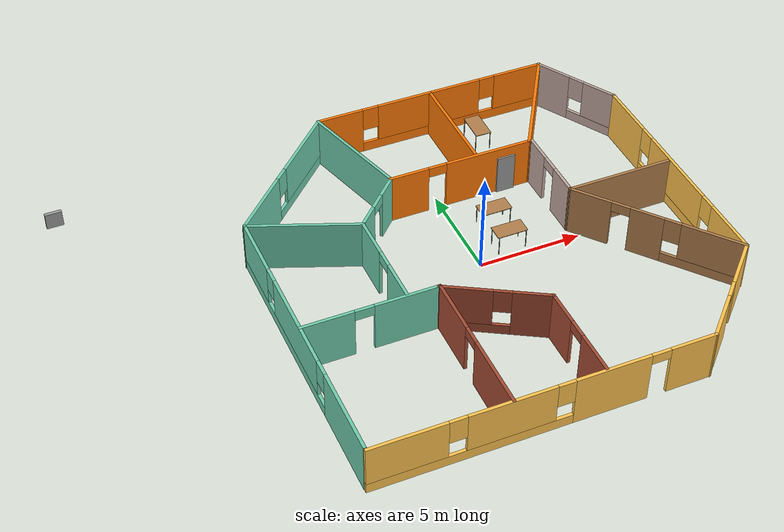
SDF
<sdf version="1.6">
 <world name="__default__">
  <model name="building">
   <pose>0.12432 -0.07335 0 0 -0 0</pose>
   <link name="Door_6">
    <collision name="Door_6_Collision">
     <geometry><box><size>0.9 0.17 2</size></box></geometry>
     <pose>0 0 1 0 -0 0</pose>
    </collision>
    <visual name="Door_6_Visual">
     <pose>0 0 1 0 -0 0</pose>
     <geometry><box><size>0.9 0.17 2</size></box></geometry>
     <material>
      <script><uri>file://media/materials/scripts/gazebo.material</uri><name>Gazebo/Grey</name></script>
     </material>
    </visual>
    <pose>3.22476 4.4878 0 0 -0 0</pose>
   </link>
   <link name="Wall_0">
    <pose>-9.87628 -2.77567 0 0 -0 1.5708</pose>
    <visual name="Wall_0_Visual_0">
     <pose>-4.91178 0 1.25 0 -0 0</pose>
     <geometry><box><size>4.17643 0.15 2.5</size></box></geometry>
     <material>
      <script><uri>file://media/materials/scripts/gazebo.material</uri><name>Gazebo/Grey</name></script>
      <ambient>0.435294 0.796078 0.67451 1</ambient>
     </material>
     <meta><layer>0</layer></meta>
    </visual>
    <collision name="Wall_0_Collision_0">
     <geometry><box><size>4.17643 0.15 2.5</size></box></geometry>
     <pose>-4.91178 0 1.25 0 -0 0</pose>
    </collision>
    <visual name="Wall_0_Visual_1">
     <pose>2.08822 0 0.25 0 -0 0</pose>
     <geometry><box><size>9.82357 0.15 0.5</size></box></geometry>
     <material>
      <script><uri>file://media/materials/scripts/gazebo.material</uri><name>Gazebo/Grey</name></script>
      <ambient>0.435294 0.796078 0.67451 1</ambient>
     </material>
     <meta><layer>0</layer></meta>
    </visual>
    <collision name="Wall_0_Collision_1">
     <geometry><box><size>9.82357 0.15 0.5</size></box></geometry>
     <pose>2.08822 0 0.25 0 -0 0</pose>
    </collision>
    <visual name="Wall_0_Visual_2">
     <pose>0.530704 0 1.5 0 -0 0</pose>
     <geometry><box><size>5.10854 0.15 2</size></box></geometry>
     <material>
      <script><uri>file://media/materials/scripts/gazebo.material</uri><name>Gazebo/Grey</name></script>
      <ambient>0.435294 0.796078 0.67451 1</ambient>
     </material>
     <meta><layer>0</layer></meta>
    </visual>
    <collision name="Wall_0_Collision_2">
     <geometry><box><size>5.10854 0.15 2</size></box></geometry>
     <pose>0.530704 0 1.5 0 -0 0</pose>
    </collision>
    <visual name="Wall_0_Visual_3">
     <pose>5.44249 0 1.5 0 -0 0</pose>
     <geometry><box><size>3.11503 0.15 2</size></box></geometry>
     <material>
      <script><uri>file://media/materials/scripts/gazebo.material</uri><name>Gazebo/Grey</name></script>
      <ambient>0.435294 0.796078 0.67451 1</ambient>
     </material>
     <meta><layer>0</layer></meta>
    </visual>
    <collision name="Wall_0_Collision_3">
     <geometry><box><size>3.11503 0.15 2</size></box></geometry>
     <pose>5.44249 0 1.5 0 -0 0</pose>
    </collision>
    <visual name="Wall_0_Visual_4">
     <pose>-2.42356 0 1.9 0 -0 0</pose>
     <geometry><box><size>0.8 0.15 1.2</size></box></geometry>
     <material>
      <script><uri>file://media/materials/scripts/gazebo.material</uri><name>Gazebo/Grey</name></script>
      <ambient>0.435294 0.796078 0.67451 1</ambient>
     </material>
     <meta><layer>0</layer></meta>
    </visual>
    <collision name="Wall_0_Collision_4">
     <geometry><box><size>0.8 0.15 1.2</size></box></geometry>
     <pose>-2.42356 0 1.9 0 -0 0</pose>
    </collision>
    <visual name="Wall_0_Visual_5">
     <pose>3.48497 0 1.9 0 -0 0</pose>
     <geometry><box><size>0.8 0.15 1.2</size></box></geometry>
     <material>
      <script><uri>file://media/materials/scripts/gazebo.material</uri><name>Gazebo/Grey</name></script>
      <ambient>0.435294 0.796078 0.67451 1</ambient>
     </material>
     <meta><layer>0</layer></meta>
    </visual>
    <collision name="Wall_0_Collision_5">
     <geometry><box><size>0.8 0.15 1.2</size></box></geometry>
     <pose>3.48497 0 1.9 0 -0 0</pose>
    </collision>
   </link>
   <link name="Wall_10">
    <pose>-6.6982 -2.75163 0 0 -0 3.14159</pose>
    <visual name="Wall_10_Visual_0">
     <pose>-1.70542 0 1.25 0 -0 0</pose>
     <geometry><box><size>3.08916 0.15 2.5</size></box></geometry>
     <material>
      <script><uri>file://media/materials/scripts/gazebo.material</uri><name>Gazebo/Grey</name></script>
      <ambient>0.435294 0.796078 0.67451 1</ambient>
     </material>
     <meta><layer>0</layer></meta>
    </visual>
    <collision name="Wall_10_Collision_0">
     <geometry><box><size>3.08916 0.15 2.5</size></box></geometry>
     <pose>-1.70542 0 1.25 0 -0 0</pose>
    </collision>
    <visual name="Wall_10_Visual_1">
     <pose>1.99458 0 1.25 0 -0 0</pose>
     <geometry><box><size>2.51084 0.15 2.5</size></box></geometry>
     <material>
      <script><uri>file://media/materials/scripts/gazebo.material</uri><name>Gazebo/Grey</name></script>
      <ambient>0.435294 0.796078 0.67451 1</ambient>
     </material>
     <meta><layer>0</layer></meta>
    </visual>
    <collision name="Wall_10_Collision_1">
     <geometry><box><size>2.51084 0.15 2.5</size></box></geometry>
     <pose>1.99458 0 1.25 0 -0 0</pose>
    </collision>
    <visual name="Wall_10_Visual_2">
     <pose>0.289158 0 2.25 0 -0 0</pose>
     <geometry><box><size>0.9 0.15 0.5</size></box></geometry>
     <material>
      <script><uri>file://media/materials/scripts/gazebo.material</uri><name>Gazebo/Grey</name></script>
      <ambient>0.435294 0.796078 0.67451 1</ambient>
     </material>
     <meta><layer>0</layer></meta>
    </visual>
    <collision name="Wall_10_Collision_2">
     <geometry><box><size>0.9 0.15 0.5</size></box></geometry>
     <pose>0.289158 0 2.25 0 -0 0</pose>
    </collision>
   </link>
   <link name="Wall_12">
    <pose>-5.00707 -0.228489 0 0 -0 1.5708</pose>
    <visual name="Wall_12_Visual_0">
     <pose>-1.49142 0 1.25 0 -0 0</pose>
     <geometry><box><size>2.01716 0.15 2.5</size></box></geometry>
     <material>
      <script><uri>file://media/materials/scripts/gazebo.material</uri><name>Gazebo/Grey</name></script>
      <ambient>0.435294 0.796078 0.67451 1</ambient>
     </material>
     <meta><layer>0</layer></meta>
    </visual>
    <collision name="Wall_12_Collision_0">
     <geometry><box><size>2.01716 0.15 2.5</size></box></geometry>
     <pose>-1.49142 0 1.25 0 -0 0</pose>
    </collision>
    <visual name="Wall_12_Visual_1">
     <pose>1.45858 0 1.25 0 -0 0</pose>
     <geometry><box><size>2.08284 0.15 2.5</size></box></geometry>
     <material>
      <script><uri>file://media/materials/scripts/gazebo.material</uri><name>Gazebo/Grey</name></script>
      <ambient>0.435294 0.796078 0.67451 1</ambient>
     </material>
     <meta><layer>0</layer></meta>
    </visual>
    <collision name="Wall_12_Collision_1">
     <geometry><box><size>2.08284 0.15 2.5</size></box></geometry>
     <pose>1.45858 0 1.25 0 -0 0</pose>
    </collision>
    <visual name="Wall_12_Visual_2">
     <pose>-0.032844 0 2.25 0 -0 0</pose>
     <geometry><box><size>0.9 0.15 0.5</size></box></geometry>
     <material>
      <script><uri>file://media/materials/scripts/gazebo.material</uri><name>Gazebo/Grey</name></script>
      <ambient>0.435294 0.796078 0.67451 1</ambient>
     </material>
     <meta><layer>0</layer></meta>
    </visual>
    <collision name="Wall_12_Collision_2">
     <geometry><box><size>0.9 0.15 0.5</size></box></geometry>
     <pose>-0.032844 0 2.25 0 -0 0</pose>
    </collision>
   </link>
   <link name="Wall_13">
    <collision name="Wall_13_Collision">
     <geometry><box><size>5.39621 0.15 2.5</size></box></geometry>
     <pose>0 0 1.25 0 -0 0</pose>
    </collision>
    <visual name="Wall_13_Visual">
     <pose>0 0 1.25 0 -0 0</pose>
     <geometry><box><size>5.39621 0.15 2.5</size></box></geometry>
     <material>
      <script><uri>file://media/materials/scripts/gazebo.material</uri><name>Gazebo/Grey</name></script>
      <ambient>0.435294 0.796078 0.67451 1</ambient>
     </material>
     <meta><layer>0</layer></meta>
    </visual>
    <pose>-7.44168 3.17292 0 0 -0 2.76018</pose>
   </link>
   <link name="Wall_15">
    <pose>-3.82267 3.38091 0 0 -0 0.785398</pose>
    <visual name="Wall_15_Visual_0">
     <pose>-1.10253 0 1.25 0 -0 0</pose>
     <geometry><box><size>1.29494 0.15 2.5</size></box></geometry>
     <material>
      <script><uri>file://media/materials/scripts/gazebo.material</uri><name>Gazebo/Grey</name></script>
      <ambient>0.435294 0.796078 0.67451 1</ambient>
     </material>
     <meta><layer>0</layer></meta>
    </visual>
    <collision name="Wall_15_Collision_0">
     <geometry><box><size>1.29494 0.15 2.5</size></box></geometry>
     <pose>-1.10253 0 1.25 0 -0 0</pose>
    </collision>
    <visual name="Wall_15_Visual_1">
     <pose>1.09747 0 1.25 0 -0 0</pose>
     <geometry><box><size>1.30506 0.15 2.5</size></box></geometry>
     <material>
      <script><uri>file://media/materials/scripts/gazebo.material</uri><name>Gazebo/Grey</name></script>
      <ambient>0.435294 0.796078 0.67451 1</ambient>
     </material>
     <meta><layer>0</layer></meta>
    </visual>
    <collision name="Wall_15_Collision_1">
     <geometry><box><size>1.30506 0.15 2.5</size></box></geometry>
     <pose>1.09747 0 1.25 0 -0 0</pose>
    </collision>
    <visual name="Wall_15_Visual_2">
     <pose>-0.005064 0 2.25 0 -0 0</pose>
     <geometry><box><size>0.9 0.15 0.5</size></box></geometry>
     <material>
      <script><uri>file://media/materials/scripts/gazebo.material</uri><name>Gazebo/Grey</name></script>
      <ambient>0.435294 0.796078 0.67451 1</ambient>
     </material>
     <meta><layer>0</layer></meta>
    </visual>
    <collision name="Wall_15_Collision_2">
     <geometry><box><size>0.9 0.15 0.5</size></box></geometry>
     <pose>-0.005064 0 2.25 0 -0 0</pose>
    </collision>
   </link>
   <link name="Wall_16">
    <pose>0.911739 4.56532 0 0 -0 0</pose>
    <visual name="Wall_16_Visual_0">
     <pose>-2.63993 0 1.25 0 -0 0</pose>
     <geometry><box><size>1.97015 0.15 2.5</size></box></geometry>
     <material>
      <script><uri>file://media/materials/scripts/gazebo.material</uri><name>Gazebo/Grey</name></script>
      <ambient>0.996078 0.47451 0.0196078 1</ambient>
     </material>
     <meta><layer>0</layer></meta>
    </visual>
    <collision name="Wall_16_Collision_0">
     <geometry><box><size>1.97015 0.15 2.5</size></box></geometry>
     <pose>-2.63993 0 1.25 0 -0 0</pose>
    </collision>
    <visual name="Wall_16_Visual_1">
     <pose>1.43507 0 1.25 0 -0 0</pose>
     <geometry><box><size>4.37985 0.15 2.5</size></box></geometry>
     <material>
      <script><uri>file://media/materials/scripts/gazebo.material</uri><name>Gazebo/Grey</name></script>
      <ambient>0.996078 0.47451 0.0196078 1</ambient>
     </material>
     <meta><layer>0</layer></meta>
    </visual>
    <collision name="Wall_16_Collision_1">
     <geometry><box><size>4.37985 0.15 2.5</size></box></geometry>
     <pose>1.43507 0 1.25 0 -0 0</pose>
    </collision>
    <visual name="Wall_16_Visual_2">
     <pose>-1.20485 0 2.25 0 -0 0</pose>
     <geometry><box><size>0.9 0.15 0.5</size></box></geometry>
     <material>
      <script><uri>file://media/materials/scripts/gazebo.material</uri><name>Gazebo/Grey</name></script>
      <ambient>0.996078 0.47451 0.0196078 1</ambient>
     </material>
     <meta><layer>0</layer></meta>
    </visual>
    <collision name="Wall_16_Collision_2">
     <geometry><box><size>0.9 0.15 0.5</size></box></geometry>
     <pose>-1.20485 0 2.25 0 -0 0</pose>
    </collision>
   </link>
   <link name="Wall_17">
    <collision name="Wall_17_Collision">
     <geometry><box><size>6.37153 0.15 2.5</size></box></geometry>
     <pose>0 0 1.25 0 -0 0</pose>
    </collision>
    <visual name="Wall_17_Visual">
     <pose>0 0 1.25 0 -0 0</pose>
     <geometry><box><size>6.37153 0.15 2.5</size></box></geometry>
     <material>
      <script><uri>file://media/materials/scripts/gazebo.material</uri><name>Gazebo/Grey</name></script>
      <ambient>0.996078 0.47451 0.0196078 1</ambient>
     </material>
     <meta><layer>0</layer></meta>
    </visual>
    <pose>6.08151 7.22111 0 0 -0 1.02313</pose>
   </link>
   <link name="Wall_19">
    <collision name="Wall_19_Collision">
     <geometry><box><size>5.67216 0.15 2.5</size></box></geometry>
     <pose>0 0 1.25 0 -0 0</pose>
    </collision>
    <visual name="Wall_19_Visual">
     <pose>0 0 1.25 0 -0 0</pose>
     <geometry><box><size>5.67216 0.15 2.5</size></box></geometry>
     <material>
      <script><uri>file://media/materials/scripts/gazebo.material</uri><name>Gazebo/Grey</name></script>
      <ambient>0.435294 0.796078 0.67451 1</ambient>
     </material>
     <meta><layer>0</layer></meta>
    </visual>
    <pose>-3.39349 7.22111 0 0 -0 1.84785</pose>
   </link>
   <link name="Wall_2">
    <pose>-7.0125 7.01311 0 0 -0 0.785398</pose>
    <visual name="Wall_2_Visual_0">
     <pose>-2.34585 0 1.25 0 -0 0</pose>
     <geometry><box><size>3.55829 0.15 2.5</size></box></geometry>
     <material>
      <script><uri>file://media/materials/scripts/gazebo.material</uri><name>Gazebo/Grey</name></script>
      <ambient>0.435294 0.796078 0.67451 1</ambient>
     </material>
     <meta><layer>0</layer></meta>
    </visual>
    <collision name="Wall_2_Collision_0">
     <geometry><box><size>3.55829 0.15 2.5</size></box></geometry>
     <pose>-2.34585 0 1.25 0 -0 0</pose>
    </collision>
    <visual name="Wall_2_Visual_1">
     <pose>1.77914 0 0.25 0 -0 0</pose>
     <geometry><box><size>4.69171 0.15 0.5</size></box></geometry>
     <material>
      <script><uri>file://media/materials/scripts/gazebo.material</uri><name>Gazebo/Grey</name></script>
      <ambient>0.435294 0.796078 0.67451 1</ambient>
     </material>
     <meta><layer>0</layer></meta>
    </visual>
    <collision name="Wall_2_Collision_1">
     <geometry><box><size>4.69171 0.15 0.5</size></box></geometry>
     <pose>1.77914 0 0.25 0 -0 0</pose>
    </collision>
    <visual name="Wall_2_Visual_2">
     <pose>2.1627 0 1.5 0 -0 0</pose>
     <geometry><box><size>3.92461 0.15 2</size></box></geometry>
     <material>
      <script><uri>file://media/materials/scripts/gazebo.material</uri><name>Gazebo/Grey</name></script>
      <ambient>0.435294 0.796078 0.67451 1</ambient>
     </material>
     <meta><layer>0</layer></meta>
    </visual>
    <collision name="Wall_2_Collision_2">
     <geometry><box><size>3.92461 0.15 2</size></box></geometry>
     <pose>2.1627 0 1.5 0 -0 0</pose>
    </collision>
    <visual name="Wall_2_Visual_3">
     <pose>-0.183159 0 1.9 0 -0 0</pose>
     <geometry><box><size>0.767103 0.15 1.2</size></box></geometry>
     <material>
      <script><uri>file://media/materials/scripts/gazebo.material</uri><name>Gazebo/Grey</name></script>
      <ambient>0.435294 0.796078 0.67451 1</ambient>
     </material>
     <meta><layer>0</layer></meta>
    </visual>
    <collision name="Wall_2_Collision_3">
     <geometry><box><size>0.767103 0.15 1.2</size></box></geometry>
     <pose>-0.183159 0 1.9 0 -0 0</pose>
    </collision>
   </link>
   <link name="Wall_21">
    <collision name="Wall_21_Collision">
     <geometry><box><size>5.25 0.15 2.5</size></box></geometry>
     <pose>0 0 1.25 0 -0 0</pose>
    </collision>
    <visual name="Wall_21_Visual">
     <pose>0 0 1.25 0 -0 0</pose>
     <geometry><box><size>5.25 0.15 2.5</size></box></geometry>
     <material>
      <script><uri>file://media/materials/scripts/gazebo.material</uri><name>Gazebo/Grey</name></script>
      <ambient>0.996078 0.47451 0.0196078 1</ambient>
     </material>
     <meta><layer>0</layer></meta>
    </visual>
    <pose>1.71208 7.28497 0 0 0 -1.5708</pose>
   </link>
   <link name="Wall_23">
    <pose>0.656712 -7.49478 0 0 -0 1.5708</pose>
    <visual name="Wall_23_Visual_0">
     <pose>-1.33124 0 1.25 0 -0 0</pose>
     <geometry><box><size>2.08751 0.15 2.5</size></box></geometry>
     <material>
      <script><uri>file://media/materials/scripts/gazebo.material</uri><name>Gazebo/Bricks</name></script>
      <ambient>1 1 1 1</ambient>
     </material>
     <meta><layer>0</layer></meta>
    </visual>
    <collision name="Wall_23_Collision_0">
     <geometry><box><size>2.08751 0.15 2.5</size></box></geometry>
     <pose>-1.33124 0 1.25 0 -0 0</pose>
    </collision>
    <visual name="Wall_23_Visual_1">
     <pose>1.49376 0 1.25 0 -0 0</pose>
     <geometry><box><size>1.76249 0.15 2.5</size></box></geometry>
     <material>
      <script><uri>file://media/materials/scripts/gazebo.material</uri><name>Gazebo/Bricks</name></script>
      <ambient>1 1 1 1</ambient>
     </material>
     <meta><layer>0</layer></meta>
    </visual>
    <collision name="Wall_23_Collision_1">
     <geometry><box><size>1.76249 0.15 2.5</size></box></geometry>
     <pose>1.49376 0 1.25 0 -0 0</pose>
    </collision>
    <visual name="Wall_23_Visual_2">
     <pose>0.162514 0 2.25 0 -0 0</pose>
     <geometry><box><size>0.9 0.15 0.5</size></box></geometry>
     <material>
      <script><uri>file://media/materials/scripts/gazebo.material</uri><name>Gazebo/Bricks</name></script>
      <ambient>1 1 1 1</ambient>
     </material>
     <meta><layer>0</layer></meta>
    </visual>
    <collision name="Wall_23_Collision_2">
     <geometry><box><size>0.9 0.15 0.5</size></box></geometry>
     <pose>0.162514 0 2.25 0 -0 0</pose>
    </collision>
   </link>
   <link name="Wall_24">
    <pose>-1.4434 -3.98228 0 0 -0 2.61799</pose>
    <visual name="Wall_24_Visual_0">
     <pose>-1.59157 0 1.25 0 -0 0</pose>
     <geometry><box><size>1.81686 0.15 2.5</size></box></geometry>
     <material>
      <script><uri>file://media/materials/scripts/gazebo.material</uri><name>Gazebo/Bricks</name></script>
      <ambient>1 1 1 1</ambient>
     </material>
     <meta><layer>0</layer></meta>
    </visual>
    <collision name="Wall_24_Collision_0">
     <geometry><box><size>1.81686 0.15 2.5</size></box></geometry>
     <pose>-1.59157 0 1.25 0 -0 0</pose>
    </collision>
    <visual name="Wall_24_Visual_1">
     <pose>0.90843 0 0.25 0 -0 0</pose>
     <geometry><box><size>3.18314 0.15 0.5</size></box></geometry>
     <material>
      <script><uri>file://media/materials/scripts/gazebo.material</uri><name>Gazebo/Bricks</name></script>
      <ambient>1 1 1 1</ambient>
     </material>
     <meta><layer>0</layer></meta>
    </visual>
    <collision name="Wall_24_Collision_1">
     <geometry><box><size>3.18314 0.15 0.5</size></box></geometry>
     <pose>0.90843 0 0.25 0 -0 0</pose>
    </collision>
    <visual name="Wall_24_Visual_2">
     <pose>1.30843 0 1.5 0 -0 0</pose>
     <geometry><box><size>2.38314 0.15 2</size></box></geometry>
     <material>
      <script><uri>file://media/materials/scripts/gazebo.material</uri><name>Gazebo/Bricks</name></script>
      <ambient>1 1 1 1</ambient>
     </material>
     <meta><layer>0</layer></meta>
    </visual>
    <collision name="Wall_24_Collision_2">
     <geometry><box><size>2.38314 0.15 2</size></box></geometry>
     <pose>1.30843 0 1.5 0 -0 0</pose>
    </collision>
    <visual name="Wall_24_Visual_3">
     <pose>-0.283141 0 1.9 0 -0 0</pose>
     <geometry><box><size>0.8 0.15 1.2</size></box></geometry>
     <material>
      <script><uri>file://media/materials/scripts/gazebo.material</uri><name>Gazebo/Bricks</name></script>
      <ambient>1 1 1 1</ambient>
     </material>
     <meta><layer>0</layer></meta>
    </visual>
    <collision name="Wall_24_Collision_3">
     <geometry><box><size>0.8 0.15 1.2</size></box></geometry>
     <pose>-0.283141 0 1.9 0 -0 0</pose>
    </collision>
   </link>
   <link name="Wall_26">
    <collision name="Wall_26_Collision">
     <geometry><box><size>5.25 0.15 2.5</size></box></geometry>
     <pose>0 0 1.25 0 -0 0</pose>
    </collision>
    <visual name="Wall_26_Visual">
     <pose>0 0 1.25 0 -0 0</pose>
     <geometry><box><size>5.25 0.15 2.5</size></box></geometry>
     <material>
      <script><uri>file://media/materials/scripts/gazebo.material</uri><name>Gazebo/Wood</name></script>
      <ambient>0.760784 0.662745 0.627451 1</ambient>
     </material>
     <meta><layer>0</layer></meta>
    </visual>
    <pose>7.14765 0.688493 0 0 -0 3.14159</pose>
   </link>
   <link name="Wall_27">
    <pose>4.59765 2.61349 0 0 -0 1.5708</pose>
    <visual name="Wall_27_Visual_0">
     <pose>-1.18491 0 1.25 0 -0 0</pose>
     <geometry><box><size>1.63019 0.15 2.5</size></box></geometry>
     <material>
      <script><uri>file://media/materials/scripts/gazebo.material</uri><name>Gazebo/Grey</name></script>
      <ambient>0.760784 0.662745 0.627451 1</ambient>
     </material>
     <meta><layer>0</layer></meta>
    </visual>
    <collision name="Wall_27_Collision_0">
     <geometry><box><size>1.63019 0.15 2.5</size></box></geometry>
     <pose>-1.18491 0 1.25 0 -0 0</pose>
    </collision>
    <visual name="Wall_27_Visual_1">
     <pose>1.2651 0 1.25 0 -0 0</pose>
     <geometry><box><size>1.46981 0.15 2.5</size></box></geometry>
     <material>
      <script><uri>file://media/materials/scripts/gazebo.material</uri><name>Gazebo/Grey</name></script>
      <ambient>0.760784 0.662745 0.627451 1</ambient>
     </material>
     <meta><layer>0</layer></meta>
    </visual>
    <collision name="Wall_27_Collision_1">
     <geometry><box><size>1.46981 0.15 2.5</size></box></geometry>
     <pose>1.2651 0 1.25 0 -0 0</pose>
    </collision>
    <visual name="Wall_27_Visual_2">
     <pose>0.080189 0 2.25 0 -0 0</pose>
     <geometry><box><size>0.9 0.15 0.5</size></box></geometry>
     <material>
      <script><uri>file://media/materials/scripts/gazebo.material</uri><name>Gazebo/Grey</name></script>
      <ambient>0.760784 0.662745 0.627451 1</ambient>
     </material>
     <meta><layer>0</layer></meta>
    </visual>
    <collision name="Wall_27_Collision_2">
     <geometry><box><size>0.9 0.15 0.5</size></box></geometry>
     <pose>0.080189 0 2.25 0 -0 0</pose>
    </collision>
   </link>
   <link name="Wall_29">
    <pose>7.23697 -2.52591 0 0 0 -0.883328</pose>
    <visual name="Wall_29_Visual_0">
     <pose>-3.18456 0 1.25 0 -0 0</pose>
     <geometry><box><size>2.09914 0.15 2.5</size></box></geometry>
     <material>
      <script><uri>file://media/materials/scripts/gazebo.material</uri><name>Gazebo/Wood</name></script>
      <ambient>0.760784 0.662745 0.627451 1</ambient>
     </material>
     <meta><layer>0</layer></meta>
    </visual>
    <collision name="Wall_29_Collision_0">
     <geometry><box><size>2.09914 0.15 2.5</size></box></geometry>
     <pose>-3.18456 0 1.25 0 -0 0</pose>
    </collision>
    <visual name="Wall_29_Visual_1">
     <pose>-0.426058 0 1.25 0 -0 0</pose>
     <geometry><box><size>1.61787 0.15 2.5</size></box></geometry>
     <material>
      <script><uri>file://media/materials/scripts/gazebo.material</uri><name>Gazebo/Wood</name></script>
      <ambient>0.760784 0.662745 0.627451 1</ambient>
     </material>
     <meta><layer>0</layer></meta>
    </visual>
    <collision name="Wall_29_Collision_1">
     <geometry><box><size>1.61787 0.15 2.5</size></box></geometry>
     <pose>-0.426058 0 1.25 0 -0 0</pose>
    </collision>
    <visual name="Wall_29_Visual_2">
     <pose>2.3085 0 0.25 0 -0 0</pose>
     <geometry><box><size>3.85126 0.15 0.5</size></box></geometry>
     <material>
      <script><uri>file://media/materials/scripts/gazebo.material</uri><name>Gazebo/Wood</name></script>
      <ambient>0.760784 0.662745 0.627451 1</ambient>
     </material>
     <meta><layer>0</layer></meta>
    </visual>
    <collision name="Wall_29_Collision_2">
     <geometry><box><size>3.85126 0.15 0.5</size></box></geometry>
     <pose>2.3085 0 0.25 0 -0 0</pose>
    </collision>
    <visual name="Wall_29_Visual_3">
     <pose>2.7085 0 1.5 0 -0 0</pose>
     <geometry><box><size>3.05126 0.15 2</size></box></geometry>
     <material>
      <script><uri>file://media/materials/scripts/gazebo.material</uri><name>Gazebo/Wood</name></script>
      <ambient>0.760784 0.662745 0.627451 1</ambient>
     </material>
     <meta><layer>0</layer></meta>
    </visual>
    <collision name="Wall_29_Collision_3">
     <geometry><box><size>3.05126 0.15 2</size></box></geometry>
     <pose>2.7085 0 1.5 0 -0 0</pose>
    </collision>
    <visual name="Wall_29_Visual_4">
     <pose>0.782874 0 1.9 0 -0 0</pose>
     <geometry><box><size>0.8 0.15 1.2</size></box></geometry>
     <material>
      <script><uri>file://media/materials/scripts/gazebo.material</uri><name>Gazebo/Wood</name></script>
      <ambient>0.760784 0.662745 0.627451 1</ambient>
     </material>
     <meta><layer>0</layer></meta>
    </visual>
    <collision name="Wall_29_Collision_4">
     <geometry><box><size>0.8 0.15 1.2</size></box></geometry>
     <pose>0.782874 0 1.9 0 -0 0</pose>
    </collision>
    <visual name="Wall_29_Visual_5">
     <pose>-1.68499 0 2.25 0 -0 0</pose>
     <geometry><box><size>0.9 0.15 0.5</size></box></geometry>
     <material>
      <script><uri>file://media/materials/scripts/gazebo.material</uri><name>Gazebo/Wood</name></script>
      <ambient>0.760784 0.662745 0.627451 1</ambient>
     </material>
     <meta><layer>0</layer></meta>
    </visual>
    <collision name="Wall_29_Collision_5">
     <geometry><box><size>0.9 0.15 0.5</size></box></geometry>
     <pose>-1.68499 0 2.25 0 -0 0</pose>
    </collision>
   </link>
   <link name="Wall_3">
    <pose>1.77628 9.87689 0 0 -0 0</pose>
    <visual name="Wall_3_Visual_0">
     <pose>-4.81625 0 1.25 0 -0 0</pose>
     <geometry><box><size>2.3675 0.15 2.5</size></box></geometry>
     <material>
      <script><uri>file://media/materials/scripts/gazebo.material</uri><name>Gazebo/Grey</name></script>
      <ambient>0.996078 0.47451 0.0196078 1</ambient>
     </material>
     <meta><layer>0</layer></meta>
    </visual>
    <collision name="Wall_3_Collision_0">
     <geometry><box><size>2.3675 0.15 2.5</size></box></geometry>
     <pose>-4.81625 0 1.25 0 -0 0</pose>
    </collision>
    <visual name="Wall_3_Visual_1">
     <pose>1.18375 0 0.25 0 -0 0</pose>
     <geometry><box><size>9.6325 0.15 0.5</size></box></geometry>
     <material>
      <script><uri>file://media/materials/scripts/gazebo.material</uri><name>Gazebo/Grey</name></script>
      <ambient>0.996078 0.47451 0.0196078 1</ambient>
     </material>
     <meta><layer>0</layer></meta>
    </visual>
    <collision name="Wall_3_Collision_1">
     <geometry><box><size>9.6325 0.15 0.5</size></box></geometry>
     <pose>1.18375 0 0.25 0 -0 0</pose>
    </collision>
    <visual name="Wall_3_Visual_2">
     <pose>-0.115398 0 1.5 0 -0 0</pose>
     <geometry><box><size>5.43421 0.15 2</size></box></geometry>
     <material>
      <script><uri>file://media/materials/scripts/gazebo.material</uri><name>Gazebo/Grey</name></script>
      <ambient>0.996078 0.47451 0.0196078 1</ambient>
     </material>
     <meta><layer>0</layer></meta>
    </visual>
    <collision name="Wall_3_Collision_2">
     <geometry><box><size>5.43421 0.15 2</size></box></geometry>
     <pose>-0.115398 0 1.5 0 -0 0</pose>
    </collision>
    <visual name="Wall_3_Visual_3">
     <pose>4.70085 0 1.5 0 -0 0</pose>
     <geometry><box><size>2.5983 0.15 2</size></box></geometry>
     <material>
      <script><uri>file://media/materials/scripts/gazebo.material</uri><name>Gazebo/Grey</name></script>
      <ambient>0.996078 0.47451 0.0196078 1</ambient>
     </material>
     <meta><layer>0</layer></meta>
    </visual>
    <collision name="Wall_3_Collision_3">
     <geometry><box><size>2.5983 0.15 2</size></box></geometry>
     <pose>4.70085 0 1.5 0 -0 0</pose>
    </collision>
    <visual name="Wall_3_Visual_4">
     <pose>-3.2325 0 1.9 0 -0 0</pose>
     <geometry><box><size>0.8 0.15 1.2</size></box></geometry>
     <material>
      <script><uri>file://media/materials/scripts/gazebo.material</uri><name>Gazebo/Grey</name></script>
      <ambient>0.996078 0.47451 0.0196078 1</ambient>
     </material>
     <meta><layer>0</layer></meta>
    </visual>
    <collision name="Wall_3_Collision_4">
     <geometry><box><size>0.8 0.15 1.2</size></box></geometry>
     <pose>-3.2325 0 1.9 0 -0 0</pose>
    </collision>
    <visual name="Wall_3_Visual_5">
     <pose>3.0017 0 1.9 0 -0 0</pose>
     <geometry><box><size>0.8 0.15 1.2</size></box></geometry>
     <material>
      <script><uri>file://media/materials/scripts/gazebo.material</uri><name>Gazebo/Grey</name></script>
      <ambient>0.996078 0.47451 0.0196078 1</ambient>
     </material>
     <meta><layer>0</layer></meta>
    </visual>
    <collision name="Wall_3_Collision_5">
     <geometry><box><size>0.8 0.15 1.2</size></box></geometry>
     <pose>3.0017 0 1.9 0 -0 0</pose>
    </collision>
   </link>
   <link name="Wall_4">
    <pose>8.78878 7.99329 0 0 0 -1.0472</pose>
    <visual name="Wall_4_Visual_0">
     <pose>-1.2928 0 1.25 0 -0 0</pose>
     <geometry><box><size>1.91439 0.15 2.5</size></box></geometry>
     <material>
      <script><uri>file://media/materials/scripts/gazebo.material</uri><name>Gazebo/Grey</name></script>
      <ambient>0.760784 0.662745 0.627451 1</ambient>
     </material>
     <meta><layer>0</layer></meta>
    </visual>
    <collision name="Wall_4_Collision_0">
     <geometry><box><size>1.91439 0.15 2.5</size></box></geometry>
     <pose>-1.2928 0 1.25 0 -0 0</pose>
    </collision>
    <visual name="Wall_4_Visual_1">
     <pose>0.957197 0 0.25 0 -0 0</pose>
     <geometry><box><size>2.58561 0.15 0.5</size></box></geometry>
     <material>
      <script><uri>file://media/materials/scripts/gazebo.material</uri><name>Gazebo/Grey</name></script>
      <ambient>0.760784 0.662745 0.627451 1</ambient>
     </material>
     <meta><layer>0</layer></meta>
    </visual>
    <collision name="Wall_4_Collision_1">
     <geometry><box><size>2.58561 0.15 0.5</size></box></geometry>
     <pose>0.957197 0 0.25 0 -0 0</pose>
    </collision>
    <visual name="Wall_4_Visual_2">
     <pose>1.3572 0 1.5 0 -0 0</pose>
     <geometry><box><size>1.78561 0.15 2</size></box></geometry>
     <material>
      <script><uri>file://media/materials/scripts/gazebo.material</uri><name>Gazebo/Grey</name></script>
      <ambient>0.760784 0.662745 0.627451 1</ambient>
     </material>
     <meta><layer>0</layer></meta>
    </visual>
    <collision name="Wall_4_Collision_2">
     <geometry><box><size>1.78561 0.15 2</size></box></geometry>
     <pose>1.3572 0 1.5 0 -0 0</pose>
    </collision>
    <visual name="Wall_4_Visual_3">
     <pose>0.064394 0 1.9 0 -0 0</pose>
     <geometry><box><size>0.8 0.15 1.2</size></box></geometry>
     <material>
      <script><uri>file://media/materials/scripts/gazebo.material</uri><name>Gazebo/Grey</name></script>
      <ambient>0.760784 0.662745 0.627451 1</ambient>
     </material>
     <meta><layer>0</layer></meta>
    </visual>
    <collision name="Wall_4_Collision_3">
     <geometry><box><size>0.8 0.15 1.2</size></box></geometry>
     <pose>0.064394 0 1.9 0 -0 0</pose>
    </collision>
   </link>
   <link name="Wall_5">
    <pose>9.87628 0.184682 0 0 0 -1.5708</pose>
    <visual name="Wall_5_Visual_0">
     <pose>-4.5091 0 1.25 0 -0 0</pose>
     <geometry><box><size>2.98181 0.15 2.5</size></box></geometry>
     <material>
      <script><uri>file://media/materials/scripts/gazebo.material</uri><name>Gazebo/Grey</name></script>
      <ambient>1 0.764706 0.305882 1</ambient>
     </material>
     <meta><layer>0</layer></meta>
    </visual>
    <collision name="Wall_5_Collision_0">
     <geometry><box><size>2.98181 0.15 2.5</size></box></geometry>
     <pose>-4.5091 0 1.25 0 -0 0</pose>
    </collision>
    <visual name="Wall_5_Visual_1">
     <pose>1.4909 0 0.25 0 -0 0</pose>
     <geometry><box><size>9.01819 0.15 0.5</size></box></geometry>
     <material>
      <script><uri>file://media/materials/scripts/gazebo.material</uri><name>Gazebo/Grey</name></script>
      <ambient>1 0.764706 0.305882 1</ambient>
     </material>
     <meta><layer>0</layer></meta>
    </visual>
    <collision name="Wall_5_Collision_1">
     <geometry><box><size>9.01819 0.15 0.5</size></box></geometry>
     <pose>1.4909 0 0.25 0 -0 0</pose>
    </collision>
    <visual name="Wall_5_Visual_2">
     <pose>0.056931 0 1.5 0 -0 0</pose>
     <geometry><box><size>4.55025 0.15 2</size></box></geometry>
     <material>
      <script><uri>file://media/materials/scripts/gazebo.material</uri><name>Gazebo/Grey</name></script>
      <ambient>1 0.764706 0.305882 1</ambient>
     </material>
     <meta><layer>0</layer></meta>
    </visual>
    <collision name="Wall_5_Collision_2">
     <geometry><box><size>4.55025 0.15 2</size></box></geometry>
     <pose>0.056931 0 1.5 0 -0 0</pose>
    </collision>
    <visual name="Wall_5_Visual_3">
     <pose>4.56603 0 1.5 0 -0 0</pose>
     <geometry><box><size>2.86794 0.15 2</size></box></geometry>
     <material>
      <script><uri>file://media/materials/scripts/gazebo.material</uri><name>Gazebo/Grey</name></script>
      <ambient>1 0.764706 0.305882 1</ambient>
     </material>
     <meta><layer>0</layer></meta>
    </visual>
    <collision name="Wall_5_Collision_3">
     <geometry><box><size>2.86794 0.15 2</size></box></geometry>
     <pose>4.56603 0 1.5 0 -0 0</pose>
    </collision>
    <visual name="Wall_5_Visual_4">
     <pose>-2.61819 0 1.9 0 -0 0</pose>
     <geometry><box><size>0.8 0.15 1.2</size></box></geometry>
     <material>
      <script><uri>file://media/materials/scripts/gazebo.material</uri><name>Gazebo/Grey</name></script>
      <ambient>1 0.764706 0.305882 1</ambient>
     </material>
     <meta><layer>0</layer></meta>
    </visual>
    <collision name="Wall_5_Collision_4">
     <geometry><box><size>0.8 0.15 1.2</size></box></geometry>
     <pose>-2.61819 0 1.9 0 -0 0</pose>
    </collision>
    <visual name="Wall_5_Visual_5">
     <pose>2.73206 0 1.9 0 -0 0</pose>
     <geometry><box><size>0.8 0.15 1.2</size></box></geometry>
     <material>
      <script><uri>file://media/materials/scripts/gazebo.material</uri><name>Gazebo/Grey</name></script>
      <ambient>1 0.764706 0.305882 1</ambient>
     </material>
     <meta><layer>0</layer></meta>
    </visual>
    <collision name="Wall_5_Collision_5">
     <geometry><box><size>0.8 0.15 1.2</size></box></geometry>
     <pose>2.73206 0 1.9 0 -0 0</pose>
    </collision>
   </link>
   <link name="Wall_6">
    <pose>7.80799 -7.80861 0 0 0 -2.35619</pose>
    <visual name="Wall_6_Visual_0">
     <pose>-1.70787 0 1.25 0 -0 0</pose>
     <geometry><box><size>2.58426 0.15 2.5</size></box></geometry>
     <material>
      <script><uri>file://media/materials/scripts/gazebo.material</uri><name>Gazebo/Grey</name></script>
      <ambient>1 0.764706 0.305882 1</ambient>
     </material>
     <meta><layer>0</layer></meta>
    </visual>
    <collision name="Wall_6_Collision_0">
     <geometry><box><size>2.58426 0.15 2.5</size></box></geometry>
     <pose>-1.70787 0 1.25 0 -0 0</pose>
    </collision>
    <visual name="Wall_6_Visual_1">
     <pose>1.74213 0 1.25 0 -0 0</pose>
     <geometry><box><size>2.51574 0.15 2.5</size></box></geometry>
     <material>
      <script><uri>file://media/materials/scripts/gazebo.material</uri><name>Gazebo/Grey</name></script>
      <ambient>1 0.764706 0.305882 1</ambient>
     </material>
     <meta><layer>0</layer></meta>
    </visual>
    <collision name="Wall_6_Collision_1">
     <geometry><box><size>2.51574 0.15 2.5</size></box></geometry>
     <pose>1.74213 0 1.25 0 -0 0</pose>
    </collision>
    <visual name="Wall_6_Visual_2">
     <pose>0.034258 0 2.25 0 -0 0</pose>
     <geometry><box><size>0.9 0.15 0.5</size></box></geometry>
     <material>
      <script><uri>file://media/materials/scripts/gazebo.material</uri><name>Gazebo/Grey</name></script>
      <ambient>1 0.764706 0.305882 1</ambient>
     </material>
     <meta><layer>0</layer></meta>
    </visual>
    <collision name="Wall_6_Collision_2">
     <geometry><box><size>0.9 0.15 0.5</size></box></geometry>
     <pose>0.034258 0 2.25 0 -0 0</pose>
    </collision>
   </link>
   <link name="Wall_7">
    <pose>-2.06029 -9.87689 0 0 -0 3.14159</pose>
    <visual name="Wall_7_Visual_0">
     <pose>-6.76985 0 1.25 0 -0 0</pose>
     <geometry><box><size>2.2103 0.15 2.5</size></box></geometry>
     <material>
      <script><uri>file://media/materials/scripts/gazebo.material</uri><name>Gazebo/Grey</name></script>
      <ambient>1 0.764706 0.305882 1</ambient>
     </material>
     <meta><layer>0</layer></meta>
    </visual>
    <collision name="Wall_7_Collision_0">
     <geometry><box><size>2.2103 0.15 2.5</size></box></geometry>
     <pose>-6.76985 0 1.25 0 -0 0</pose>
    </collision>
    <visual name="Wall_7_Visual_1">
     <pose>-3.02396 0 1.25 0 -0 0</pose>
     <geometry><box><size>3.48148 0.15 2.5</size></box></geometry>
     <material>
      <script><uri>file://media/materials/scripts/gazebo.material</uri><name>Gazebo/Grey</name></script>
      <ambient>1 0.764706 0.305882 1</ambient>
     </material>
     <meta><layer>0</layer></meta>
    </visual>
    <collision name="Wall_7_Collision_1">
     <geometry><box><size>3.48148 0.15 2.5</size></box></geometry>
     <pose>-3.02396 0 1.25 0 -0 0</pose>
    </collision>
    <visual name="Wall_7_Visual_2">
     <pose>3.29589 0 0.25 0 -0 0</pose>
     <geometry><box><size>9.15822 0.15 0.5</size></box></geometry>
     <material>
      <script><uri>file://media/materials/scripts/gazebo.material</uri><name>Gazebo/Grey</name></script>
      <ambient>1 0.764706 0.305882 1</ambient>
     </material>
     <meta><layer>0</layer></meta>
    </visual>
    <collision name="Wall_7_Collision_2">
     <geometry><box><size>9.15822 0.15 0.5</size></box></geometry>
     <pose>3.29589 0 0.25 0 -0 0</pose>
    </collision>
    <visual name="Wall_7_Visual_3">
     <pose>1.51276 0 1.5 0 -0 0</pose>
     <geometry><box><size>3.99196 0.15 2</size></box></geometry>
     <material>
      <script><uri>file://media/materials/scripts/gazebo.material</uri><name>Gazebo/Grey</name></script>
      <ambient>1 0.764706 0.305882 1</ambient>
     </material>
     <meta><layer>0</layer></meta>
    </visual>
    <collision name="Wall_7_Collision_3">
     <geometry><box><size>3.99196 0.15 2</size></box></geometry>
     <pose>1.51276 0 1.5 0 -0 0</pose>
    </collision>
    <visual name="Wall_7_Visual_4">
     <pose>6.09187 0 1.5 0 -0 0</pose>
     <geometry><box><size>3.56625 0.15 2</size></box></geometry>
     <material>
      <script><uri>file://media/materials/scripts/gazebo.material</uri><name>Gazebo/Grey</name></script>
      <ambient>1 0.764706 0.305882 1</ambient>
     </material>
     <meta><layer>0</layer></meta>
    </visual>
    <collision name="Wall_7_Collision_4">
     <geometry><box><size>3.56625 0.15 2</size></box></geometry>
     <pose>6.09187 0 1.5 0 -0 0</pose>
    </collision>
    <visual name="Wall_7_Visual_5">
     <pose>-0.883218 0 1.9 0 -0 0</pose>
     <geometry><box><size>0.8 0.15 1.2</size></box></geometry>
     <material>
      <script><uri>file://media/materials/scripts/gazebo.material</uri><name>Gazebo/Grey</name></script>
      <ambient>1 0.764706 0.305882 1</ambient>
     </material>
     <meta><layer>0</layer></meta>
    </visual>
    <collision name="Wall_7_Collision_5">
     <geometry><box><size>0.8 0.15 1.2</size></box></geometry>
     <pose>-0.883218 0 1.9 0 -0 0</pose>
    </collision>
    <visual name="Wall_7_Visual_6">
     <pose>3.90875 0 1.9 0 -0 0</pose>
     <geometry><box><size>0.8 0.15 1.2</size></box></geometry>
     <material>
      <script><uri>file://media/materials/scripts/gazebo.material</uri><name>Gazebo/Grey</name></script>
      <ambient>1 0.764706 0.305882 1</ambient>
     </material>
     <meta><layer>0</layer></meta>
    </visual>
    <collision name="Wall_7_Collision_6">
     <geometry><box><size>0.8 0.15 1.2</size></box></geometry>
     <pose>3.90875 0 1.9 0 -0 0</pose>
    </collision>
    <visual name="Wall_7_Visual_7">
     <pose>-5.2147 0 2.25 0 -0 0</pose>
     <geometry><box><size>0.9 0.15 0.5</size></box></geometry>
     <material>
      <script><uri>file://media/materials/scripts/gazebo.material</uri><name>Gazebo/Grey</name></script>
      <ambient>1 0.764706 0.305882 1</ambient>
     </material>
     <meta><layer>0</layer></meta>
    </visual>
    <collision name="Wall_7_Collision_7">
     <geometry><box><size>0.9 0.15 0.5</size></box></geometry>
     <pose>-5.2147 0 2.25 0 -0 0</pose>
    </collision>
   </link>
   <link name="Wall_9">
    <pose>-3.52319 -6.30163 0 0 -0 1.5633</pose>
    <visual name="Wall_9_Visual_0">
     <pose>-1.84607 0 1.25 0 -0 0</pose>
     <geometry><box><size>3.55786 0.15 2.5</size></box></geometry>
     <material>
      <script><uri>file://media/materials/scripts/gazebo.material</uri><name>Gazebo/Bricks</name></script>
      <ambient>1 1 1 1</ambient>
     </material>
     <meta><layer>0</layer></meta>
    </visual>
    <collision name="Wall_9_Collision_0">
     <geometry><box><size>3.55786 0.15 2.5</size></box></geometry>
     <pose>-1.84607 0 1.25 0 -0 0</pose>
    </collision>
    <visual name="Wall_9_Visual_1">
     <pose>2.22893 0 1.25 0 -0 0</pose>
     <geometry><box><size>2.79214 0.15 2.5</size></box></geometry>
     <material>
      <script><uri>file://media/materials/scripts/gazebo.material</uri><name>Gazebo/Bricks</name></script>
      <ambient>1 1 1 1</ambient>
     </material>
     <meta><layer>0</layer></meta>
    </visual>
    <collision name="Wall_9_Collision_1">
     <geometry><box><size>2.79214 0.15 2.5</size></box></geometry>
     <pose>2.22893 0 1.25 0 -0 0</pose>
    </collision>
    <visual name="Wall_9_Visual_2">
     <pose>0.382859 0 2.25 0 -0 0</pose>
     <geometry><box><size>0.9 0.15 0.5</size></box></geometry>
     <material>
      <script><uri>file://media/materials/scripts/gazebo.material</uri><name>Gazebo/Bricks</name></script>
      <ambient>1 1 1 1</ambient>
     </material>
     <meta><layer>0</layer></meta>
    </visual>
    <collision name="Wall_9_Collision_2">
     <geometry><box><size>0.9 0.15 0.5</size></box></geometry>
     <pose>0.382859 0 2.25 0 -0 0</pose>
    </collision>
   </link>
   <link name="Window_12">
    <collision name="Window_12_Collision">
     <geometry><box><size>0.8 0.17 0.8</size></box></geometry>
     <pose>0 0 0.4 0 -0 0</pose>
    </collision>
    <visual name="Window_12_Visual">
     <pose>0 0 0.4 0 -0 0</pose>
     <geometry><box><size>0.8 0.17 0.8</size></box></geometry>
     <material>
      <script><uri>file://media/materials/scripts/gazebo.material</uri><name>Gazebo/Grey</name></script>
     </material>
    </visual>
    <pose>-17.2858 9.80538 0.5 0 -0 0</pose>
   </link>
   <static>1</static>
  </model>
  <model name="table">
   <static>1</static>
   <link name="link">
    <collision name="surface">
     <pose>0 0 1 0 -0 0</pose>
     <geometry><box><size>1.5 0.8 0.03</size></box></geometry>
     <surface><friction><ode><mu>0.6</mu><mu2>0.6</mu2></ode></friction></surface>
    </collision>
    <visual name="visual1">
     <pose>0 0 1 0 -0 0</pose>
     <geometry><box><size>1.5 0.8 0.03</size></box></geometry>
     <material>
      <script><uri>file://media/materials/scripts/gazebo.material</uri><name>Gazebo/Wood</name></script>
     </material>
    </visual>
    <collision name="front_left_leg">
     <pose>0.68 0.38 0.5 0 -0 0</pose>
     <geometry><cylinder><radius>0.02</radius><length>1</length></cylinder></geometry>
    </collision>
    <visual name="front_left_leg">
     <pose>0.68 0.38 0.5 0 -0 0</pose>
     <geometry><cylinder><radius>0.02</radius><length>1</length></cylinder></geometry>
     <material>
      <script><uri>file://media/materials/scripts/gazebo.material</uri><name>Gazebo/Grey</name></script>
     </material>
    </visual>
    <collision name="front_right_leg">
     <pose>0.68 -0.38 0.5 0 -0 0</pose>
     <geometry><cylinder><radius>0.02</radius><length>1</length></cylinder></geometry>
    </collision>
    <visual name="front_right_leg">
     <pose>0.68 -0.38 0.5 0 -0 0</pose>
     <geometry><cylinder><radius>0.02</radius><length>1</length></cylinder></geometry>
     <material>
      <script><uri>file://media/materials/scripts/gazebo.material</uri><name>Gazebo/Grey</name></script>
     </material>
    </visual>
    <collision name="back_right_leg">
     <pose>-0.68 -0.38 0.5 0 -0 0</pose>
     <geometry><cylinder><radius>0.02</radius><length>1</length></cylinder></geometry>
    </collision>
    <visual name="back_right_leg">
     <pose>-0.68 -0.38 0.5 0 -0 0</pose>
     <geometry><cylinder><radius>0.02</radius><length>1</length></cylinder></geometry>
     <material>
      <script><uri>file://media/materials/scripts/gazebo.material</uri><name>Gazebo/Grey</name></script>
     </material>
    </visual>
    <collision name="back_left_leg">
     <pose>-0.68 0.38 0.5 0 -0 0</pose>
     <geometry><cylinder><radius>0.02</radius><length>1</length></cylinder></geometry>
    </collision>
    <visual name="back_left_leg">
     <pose>-0.68 0.38 0.5 0 -0 0</pose>
     <geometry><cylinder><radius>0.02</radius><length>1</length></cylinder></geometry>
     <material>
      <script><uri>file://media/materials/scripts/gazebo.material</uri><name>Gazebo/Grey</name></script>
     </material>
    </visual>
   </link>
   <pose>1.77087 2.37754 0 0 -0 0</pose>
  </model>
  <model name="table_0">
   <static>1</static>
   <link name="link">
    <collision name="surface">
     <pose>0 0 1 0 -0 0</pose>
     <geometry><box><size>1.5 0.8 0.03</size></box></geometry>
     <surface><friction><ode><mu>0.6</mu><mu2>0.6</mu2></ode></friction></surface>
    </collision>
    <visual name="visual1">
     <pose>0 0 1 0 -0 0</pose>
     <geometry><box><size>1.5 0.8 0.03</size></box></geometry>
     <material>
      <script><uri>file://media/materials/scripts/gazebo.material</uri><name>Gazebo/Wood</name></script>
     </material>
    </visual>
    <collision name="front_left_leg">
     <pose>0.68 0.38 0.5 0 -0 0</pose>
     <geometry><cylinder><radius>0.02</radius><length>1</length></cylinder></geometry>
    </collision>
    <visual name="front_left_leg">
     <pose>0.68 0.38 0.5 0 -0 0</pose>
     <geometry><cylinder><radius>0.02</radius><length>1</length></cylinder></geometry>
     <material>
      <script><uri>file://media/materials/scripts/gazebo.material</uri><name>Gazebo/Grey</name></script>
     </material>
    </visual>
    <collision name="front_right_leg">
     <pose>0.68 -0.38 0.5 0 -0 0</pose>
     <geometry><cylinder><radius>0.02</radius><length>1</length></cylinder></geometry>
    </collision>
    <visual name="front_right_leg">
     <pose>0.68 -0.38 0.5 0 -0 0</pose>
     <geometry><cylinder><radius>0.02</radius><length>1</length></cylinder></geometry>
     <material>
      <script><uri>file://media/materials/scripts/gazebo.material</uri><name>Gazebo/Grey</name></script>
     </material>
    </visual>
    <collision name="back_right_leg">
     <pose>-0.68 -0.38 0.5 0 -0 0</pose>
     <geometry><cylinder><radius>0.02</radius><length>1</length></cylinder></geometry>
    </collision>
    <visual name="back_right_leg">
     <pose>-0.68 -0.38 0.5 0 -0 0</pose>
     <geometry><cylinder><radius>0.02</radius><length>1</length></cylinder></geometry>
     <material>
      <script><uri>file://media/materials/scripts/gazebo.material</uri><name>Gazebo/Grey</name></script>
     </material>
    </visual>
    <collision name="back_left_leg">
     <pose>-0.68 0.38 0.5 0 -0 0</pose>
     <geometry><cylinder><radius>0.02</radius><length>1</length></cylinder></geometry>
    </collision>
    <visual name="back_left_leg">
     <pose>-0.68 0.38 0.5 0 -0 0</pose>
     <geometry><cylinder><radius>0.02</radius><length>1</length></cylinder></geometry>
     <material>
      <script><uri>file://media/materials/scripts/gazebo.material</uri><name>Gazebo/Grey</name></script>
     </material>
    </visual>
   </link>
   <pose>1.75252 0.721588 0 0 -0 0</pose>
  </model>
  <model name="table_8">
   <static>1</static>
   <link name="link">
    <collision name="surface">
     <pose>0 0 1 0 -0 0</pose>
     <geometry><box><size>1.5 0.8 0.03</size></box></geometry>
     <surface><friction><ode><mu>0.6</mu><mu2>0.6</mu2></ode></friction></surface>
    </collision>
    <visual name="visual1">
     <pose>0 0 1 0 -0 0</pose>
     <geometry><box><size>1.5 0.8 0.03</size></box></geometry>
     <material>
      <script><uri>file://media/materials/scripts/gazebo.material</uri><name>Gazebo/Wood</name></script>
     </material>
    </visual>
    <collision name="front_left_leg">
     <pose>0.68 0.38 0.5 0 -0 0</pose>
     <geometry><cylinder><radius>0.02</radius><length>1</length></cylinder></geometry>
    </collision>
    <visual name="front_left_leg">
     <pose>0.68 0.38 0.5 0 -0 0</pose>
     <geometry><cylinder><radius>0.02</radius><length>1</length></cylinder></geometry>
     <material>
      <script><uri>file://media/materials/scripts/gazebo.material</uri><name>Gazebo/Grey</name></script>
     </material>
    </visual>
    <collision name="front_right_leg">
     <pose>0.68 -0.38 0.5 0 -0 0</pose>
     <geometry><cylinder><radius>0.02</radius><length>1</length></cylinder></geometry>
    </collision>
    <visual name="front_right_leg">
     <pose>0.68 -0.38 0.5 0 -0 0</pose>
     <geometry><cylinder><radius>0.02</radius><length>1</length></cylinder></geometry>
     <material>
      <script><uri>file://media/materials/scripts/gazebo.material</uri><name>Gazebo/Grey</name></script>
     </material>
    </visual>
    <collision name="back_right_leg">
     <pose>-0.68 -0.38 0.5 0 -0 0</pose>
     <geometry><cylinder><radius>0.02</radius><length>1</length></cylinder></geometry>
    </collision>
    <visual name="back_right_leg">
     <pose>-0.68 -0.38 0.5 0 -0 0</pose>
     <geometry><cylinder><radius>0.02</radius><length>1</length></cylinder></geometry>
     <material>
      <script><uri>file://media/materials/scripts/gazebo.material</uri><name>Gazebo/Grey</name></script>
     </material>
    </visual>
    <collision name="back_left_leg">
     <pose>-0.68 0.38 0.5 0 -0 0</pose>
     <geometry><cylinder><radius>0.02</radius><length>1</length></cylinder></geometry>
    </collision>
    <visual name="back_left_leg">
     <pose>-0.68 0.38 0.5 0 -0 0</pose>
     <geometry><cylinder><radius>0.02</radius><length>1</length></cylinder></geometry>
     <material>
      <script><uri>file://media/materials/scripts/gazebo.material</uri><name>Gazebo/Grey</name></script>
     </material>
    </visual>
   </link>
   <pose>3.70816 8.19779 0 0 0 -1.58931</pose>
  </model>
 </world>
</sdf>
